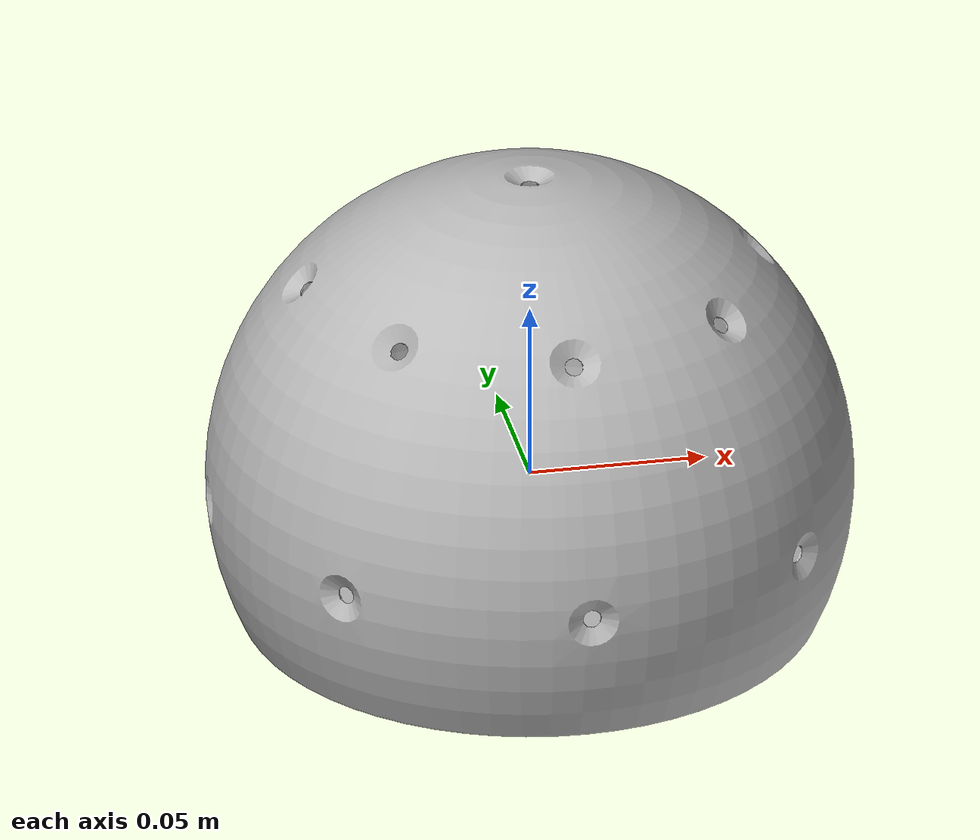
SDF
<?xml version="1.0" ?>
<sdf version="1.6">
	<model name="sphereTracker18cm">
		<link name="sphereTracker18cm">
			<pose frame="">0.0 0.0 0.0 0.0 -0.0 0.0</pose>
			<inertial>
				<pose frame="">0.0 0.0 0.0 0 0 0</pose>
				<mass>2.379627947952003</mass>
				<inertia>
					<ixx>0.010987621230092537</ixx>
					<ixy>3.730716543951531e-06</ixy>
					<ixz>-2.494925547762186e-06</ixz>
					<iyy>0.010970492456752601</iyy>
					<iyz>-1.1400132948580042e-06</iyz>
					<izz>0.013063654327938504</izz>
				</inertia>
			</inertial>
			<collision name="sphereTracker18cm_collision">
				<geometry>
					<mesh>
						<uri>model://sphereTracker18cm/meshes/CAD/sphereTracker18cm.stl</uri>
						<scale>0.001 0.001 0.001</scale>
					</mesh>
				</geometry>
			</collision>
			<visual name="sphereTracker18cm_visual">
				<geometry>
					<mesh>
						<uri>model://sphereTracker18cm/meshes/CAD/sphereTracker18cm.stl</uri>
						<scale>0.001 0.001 0.001</scale>
					</mesh>
				</geometry>
			</visual>
		</link>
		<plugin filename="libmyomuscle_plugin.so" name="myomuscle_plugin"/>
	</model>
</sdf>
